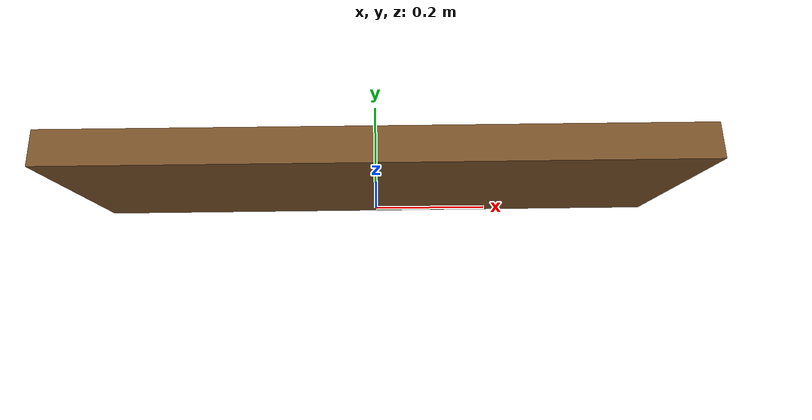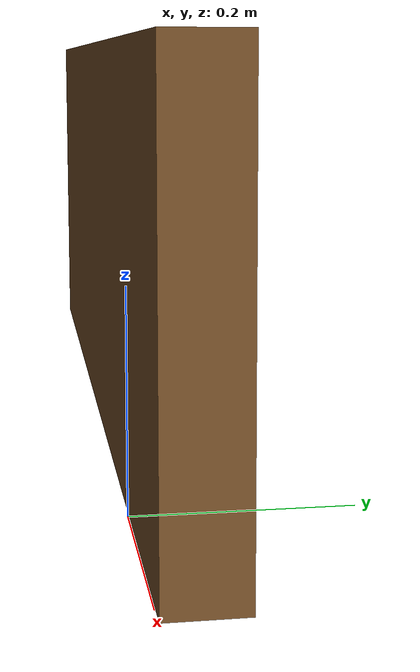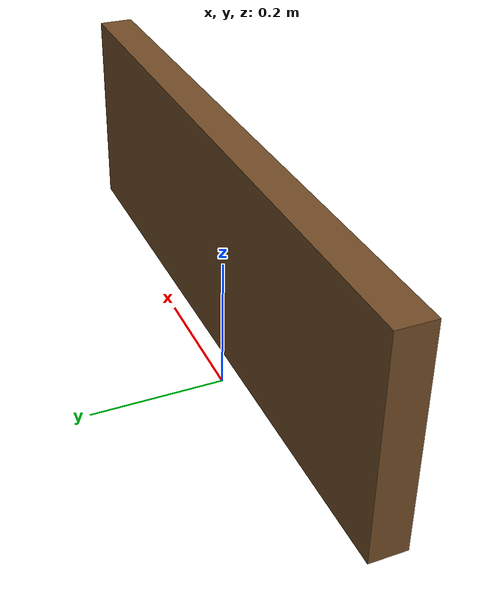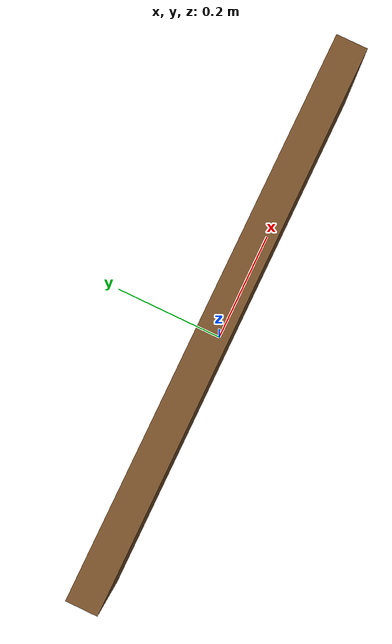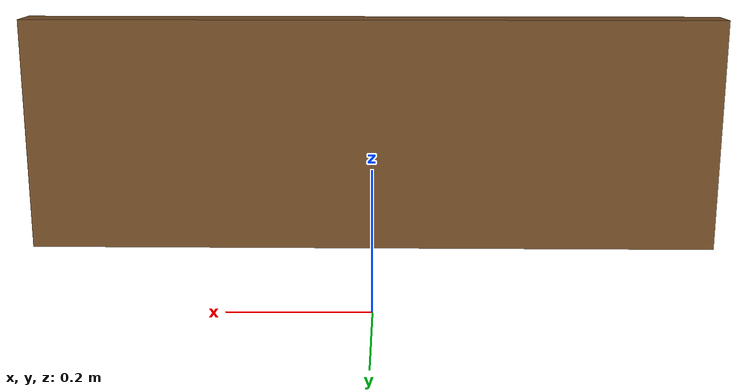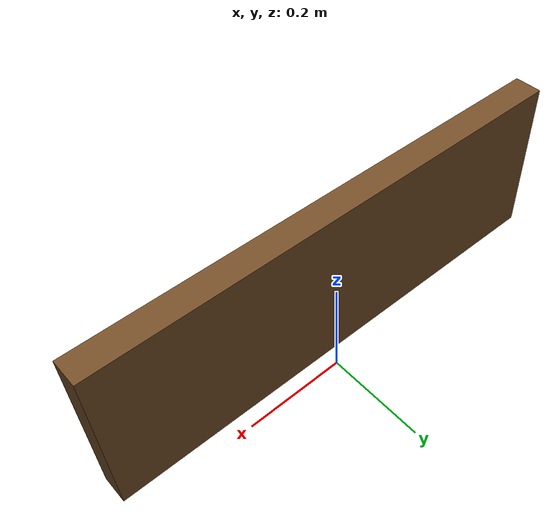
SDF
<?xml version="1.0"?>
<sdf version="1.7">
  <model name="wall90cm">
    <static>true</static>

    <pose>0 0 0.25 0 0 0</pose>

    <link name="link">
      <collision name="collision">
        <geometry>
          <box>
            <size>0.9 0.05 0.3</size>
          </box>
        </geometry>
      </collision>

      <visual name="visual">
        <geometry>
          <box>
            <size>0.9 0.05 0.3</size>
          </box>
        </geometry>

        <!-- Material portable (Ignition + gz-sim) -->
        <material>
          <!-- “wood-ish” simple -->
          <ambient>0.45 0.30 0.15 1</ambient>
          <diffuse>0.45 0.30 0.15 1</diffuse>
          <specular>0.05 0.05 0.05 1</specular>
        </material>
      </visual>
    </link>
  </model>
</sdf>
